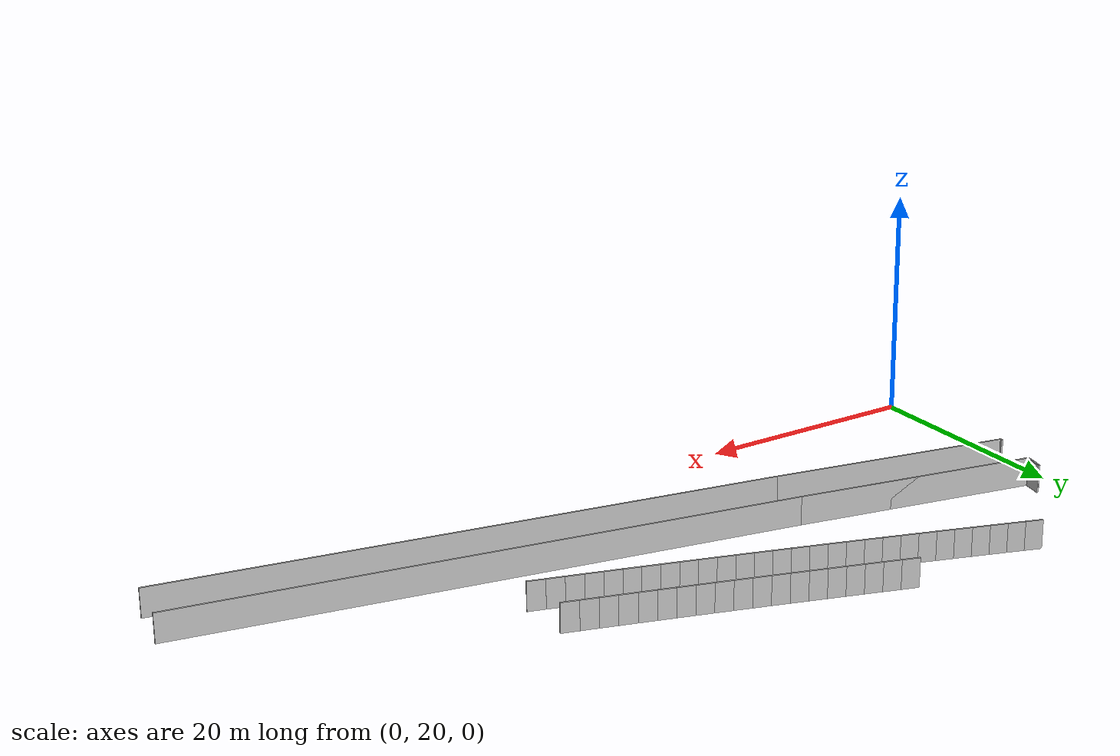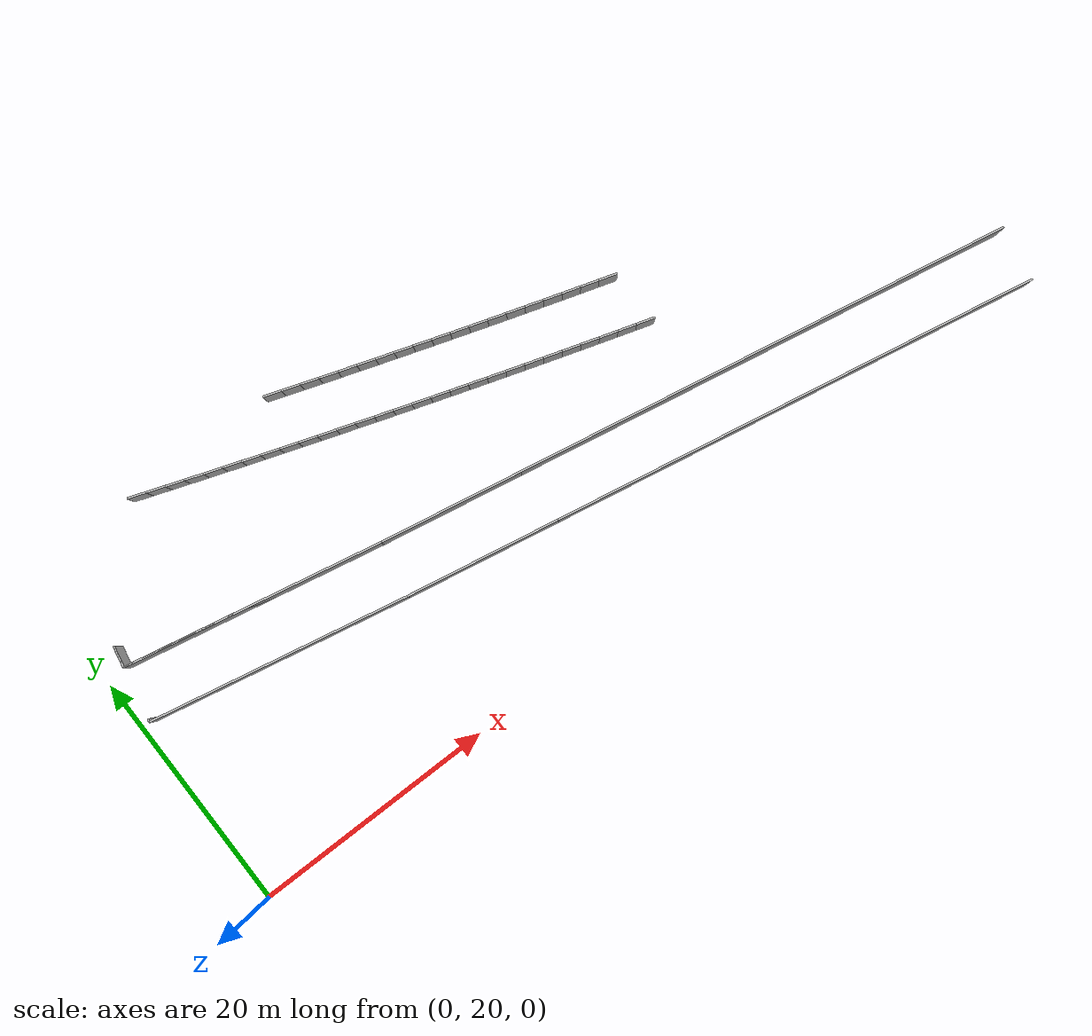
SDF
<?xml version="1.0" ?>
<sdf version="1.6">
  <model name="sps_1604">
    <pose frame="">0 0 0 0 -0 0</pose>
    <static>1</static>
    <self_collide>0</self_collide>
    <allow_auto_disable>0</allow_auto_disable>
    <link name="Wall27">
      <kinematic>0</kinematic>
      <gravity>1</gravity>
      <self_collide>0</self_collide>
      <collision name="collision">
        <geometry>
          <box>
            <size>21.2884 0.15 2.5</size>
          </box>
        </geometry>
        <pose frame="">0 0 0 0 -0 0</pose>
      </collision>
      <visual name="visual">
        <geometry>
          <box>
            <size>21.2884 0.15 2.5</size>
          </box>
        </geometry>
        <pose frame="">0 0 0 0 -0 0</pose>
        <cast_shadows>1</cast_shadows>
        <transparency>0.0</transparency>
      </visual>
      <pose frame="">11.6385 33.6256 1.25 0 -0 2.93723</pose>
    </link>
    <link name="Wall282">
      <kinematic>0</kinematic>
      <gravity>1</gravity>
      <self_collide>0</self_collide>
      <collision name="collision">
        <geometry>
          <box>
            <size>1.74962 0.15 2.5</size>
          </box>
        </geometry>
        <pose frame="">0 0 0 0 -0 0</pose>
      </collision>
      <visual name="visual">
        <geometry>
          <box>
            <size>1.74962 0.15 2.5</size>
          </box>
        </geometry>
        <pose frame="">0 0 0 0 -0 0</pose>
        <cast_shadows>1</cast_shadows>
        <transparency>0.0</transparency>
      </visual>
      <pose frame="">2.29986 41.0501 1.25 0 -0 1.36638</pose>
    </link>
    <link name="Wall284">
      <kinematic>0</kinematic>
      <gravity>1</gravity>
      <self_collide>0</self_collide>
      <collision name="collision">
        <geometry>
          <box>
            <size>11.7016 0.15 2.5</size>
          </box>
        </geometry>
        <pose frame="">0 0 0 0 -0 0</pose>
      </collision>
      <visual name="visual">
        <geometry>
          <box>
            <size>11.7016 0.15 2.5</size>
          </box>
        </geometry>
        <pose frame="">0 0 0 0 -0 0</pose>
        <cast_shadows>1</cast_shadows>
        <transparency>0.0</transparency>
      </visual>
      <pose frame="">28.7219 34.7762 1.25 0 -0 2.95339</pose>
    </link>
    <link name="Wall353">
      <kinematic>0</kinematic>
      <gravity>1</gravity>
      <self_collide>0</self_collide>
      <collision name="collision">
        <geometry>
          <box>
            <size>12.6313 0.15 2.5</size>
          </box>
        </geometry>
        <pose frame="">0 0 0 0 -0 0</pose>
      </collision>
      <visual name="visual">
        <geometry>
          <box>
            <size>12.6313 0.15 2.5</size>
          </box>
        </geometry>
        <pose frame="">0 0 0 0 -0 0</pose>
        <cast_shadows>1</cast_shadows>
        <transparency>0.0</transparency>
      </visual>
      <pose frame="">28.2653 30.2838 1.25 0 -0 2.95338</pose>
    </link>
    <link name="Wall432">
      <kinematic>0</kinematic>
      <gravity>1</gravity>
      <self_collide>0</self_collide>
      <collision name="collision">
        <geometry>
          <box>
            <size>0.249531 0.15 2.5</size>
          </box>
        </geometry>
        <pose frame="">0 0 0 0 -0 0</pose>
      </collision>
      <visual name="visual">
        <geometry>
          <box>
            <size>0.249531 0.15 2.5</size>
          </box>
        </geometry>
        <pose frame="">0 0 0 0 -0 0</pose>
        <cast_shadows>1</cast_shadows>
        <transparency>0.0</transparency>
      </visual>
      <pose frame="">1.24105 35.9079 1.25 0 -0 1.36736</pose>
    </link>
    <link name="Wall611">
      <kinematic>0</kinematic>
      <gravity>1</gravity>
      <self_collide>0</self_collide>
      <collision name="collision">
        <geometry>
          <box>
            <size>21.2955 0.15 2.5</size>
          </box>
        </geometry>
        <pose frame="">0 0 0 0 -0 0</pose>
      </collision>
      <visual name="visual">
        <geometry>
          <box>
            <size>21.2955 0.15 2.5</size>
          </box>
        </geometry>
        <pose frame="">0 0 0 0 -0 0</pose>
        <cast_shadows>1</cast_shadows>
        <transparency>0.0</transparency>
      </visual>
      <pose frame="">12.5484 38.0322 1.25 0 -0 2.93719</pose>
    </link>
    <link name="Wall989">
      <kinematic>0</kinematic>
      <gravity>1</gravity>
      <self_collide>0</self_collide>
      <collision name="collision">
        <geometry>
          <box>
            <size>52.9169 0.15 2.5</size>
          </box>
        </geometry>
        <pose frame="">0 0 0 0 -0 0</pose>
      </collision>
      <visual name="visual">
        <geometry>
          <box>
            <size>52.9169 0.15 2.5</size>
          </box>
        </geometry>
        <pose frame="">0 0 0 0 -0 0</pose>
        <cast_shadows>1</cast_shadows>
        <transparency>0.0</transparency>
      </visual>
      <pose frame="">48.0525 26.515 1.25 0 -0 2.95338</pose>
    </link>
    <link name="Wall990">
      <kinematic>0</kinematic>
      <gravity>1</gravity>
      <self_collide>0</self_collide>
      <collision name="collision">
        <geometry>
          <box>
            <size>21.2884 0.15 2.5</size>
          </box>
        </geometry>
        <pose frame="">0 0 0 0 -0 0</pose>
      </collision>
      <visual name="visual">
        <geometry>
          <box>
            <size>21.2884 0.15 2.5</size>
          </box>
        </geometry>
        <pose frame="">0 0 0 0 -0 0</pose>
        <cast_shadows>1</cast_shadows>
        <transparency>0.0</transparency>
      </visual>
      <pose frame="">11.6385 33.6256 1.25 0 -0 2.93723</pose>
    </link>
    <link name="Wall991">
      <kinematic>0</kinematic>
      <gravity>1</gravity>
      <self_collide>0</self_collide>
      <collision name="collision">
        <geometry>
          <box>
            <size>0.249531 0.15 2.5</size>
          </box>
        </geometry>
        <pose frame="">0 0 0 0 -0 0</pose>
      </collision>
      <visual name="visual">
        <geometry>
          <box>
            <size>0.249531 0.15 2.5</size>
          </box>
        </geometry>
        <pose frame="">0 0 0 0 -0 0</pose>
        <cast_shadows>1</cast_shadows>
        <transparency>0.0</transparency>
      </visual>
      <pose frame="">1.24105 35.9079 1.25 0 -0 1.36736</pose>
    </link>
    <link name="Wall995">
      <kinematic>0</kinematic>
      <gravity>1</gravity>
      <self_collide>0</self_collide>
      <collision name="collision">
        <geometry>
          <box>
            <size>1.74962 0.15 2.5</size>
          </box>
        </geometry>
        <pose frame="">0 0 0 0 -0 0</pose>
      </collision>
      <visual name="visual">
        <geometry>
          <box>
            <size>1.74962 0.15 2.5</size>
          </box>
        </geometry>
        <pose frame="">0 0 0 0 -0 0</pose>
        <cast_shadows>1</cast_shadows>
        <transparency>0.0</transparency>
      </visual>
      <pose frame="">2.29986 41.0501 1.25 0 0 -1.77521</pose>
    </link>
    <link name="Wall996">
      <kinematic>0</kinematic>
      <gravity>1</gravity>
      <self_collide>0</self_collide>
      <collision name="collision">
        <geometry>
          <box>
            <size>21.2955 0.15 2.5</size>
          </box>
        </geometry>
        <pose frame="">0 0 0 0 -0 0</pose>
      </collision>
      <visual name="visual">
        <geometry>
          <box>
            <size>21.2955 0.15 2.5</size>
          </box>
        </geometry>
        <pose frame="">0 0 0 0 -0 0</pose>
        <cast_shadows>1</cast_shadows>
        <transparency>0.0</transparency>
      </visual>
      <pose frame="">12.5484 38.0322 1.25 0 0 -0.204404</pose>
    </link>
    <link name="Wall997">
      <kinematic>0</kinematic>
      <gravity>1</gravity>
      <self_collide>0</self_collide>
      <collision name="collision">
        <geometry>
          <box>
            <size>52.7767 0.15 2.5</size>
          </box>
        </geometry>
        <pose frame="">0 0 0 0 -0 0</pose>
      </collision>
      <visual name="visual">
        <geometry>
          <box>
            <size>52.7767 0.15 2.5</size>
          </box>
        </geometry>
        <pose frame="">0 0 0 0 -0 0</pose>
        <cast_shadows>1</cast_shadows>
        <transparency>0.0</transparency>
      </visual>
      <pose frame="">48.8968 30.9339 1.25 0 0 -0.188199</pose>
    </link>
    <link name="Wall8790">
      <kinematic>0</kinematic>
      <gravity>1</gravity>
      <self_collide>0</self_collide>
      <collision name="collision">
        <geometry>
          <box>
            <size>1.499 0.15 2.5</size>
          </box>
        </geometry>
        <pose frame="">0 0 0 0 -0 0</pose>
      </collision>
      <visual name="visual">
        <geometry>
          <box>
            <size>1.499 0.15 2.5</size>
          </box>
        </geometry>
        <pose frame="">0 0 0 0 -0 0</pose>
        <cast_shadows>1</cast_shadows>
        <transparency>0.0</transparency>
      </visual>
      <pose frame="">10.5833 49.8978 1.25 0 0 -0.346732</pose>
    </link>
    <link name="Wall8791">
      <kinematic>0</kinematic>
      <gravity>1</gravity>
      <self_collide>0</self_collide>
      <collision name="collision">
        <geometry>
          <box>
            <size>1.49897 0.15 2.5</size>
          </box>
        </geometry>
        <pose frame="">0 0 0 0 -0 0</pose>
      </collision>
      <visual name="visual">
        <geometry>
          <box>
            <size>1.49897 0.15 2.5</size>
          </box>
        </geometry>
        <pose frame="">0 0 0 0 -0 0</pose>
        <cast_shadows>1</cast_shadows>
        <transparency>0.0</transparency>
      </visual>
      <pose frame="">11.9936 49.3896 1.25 0 0 -0.345007</pose>
    </link>
    <link name="Wall8792">
      <kinematic>0</kinematic>
      <gravity>1</gravity>
      <self_collide>0</self_collide>
      <collision name="collision">
        <geometry>
          <box>
            <size>1.499 0.15 2.5</size>
          </box>
        </geometry>
        <pose frame="">0 0 0 0 -0 0</pose>
      </collision>
      <visual name="visual">
        <geometry>
          <box>
            <size>1.499 0.15 2.5</size>
          </box>
        </geometry>
        <pose frame="">0 0 0 0 -0 0</pose>
        <cast_shadows>1</cast_shadows>
        <transparency>0.0</transparency>
      </visual>
      <pose frame="">13.4046 48.8836 1.25 0 0 -0.343616</pose>
    </link>
    <link name="Wall8793">
      <kinematic>0</kinematic>
      <gravity>1</gravity>
      <self_collide>0</self_collide>
      <collision name="collision">
        <geometry>
          <box>
            <size>1.49901 0.15 2.5</size>
          </box>
        </geometry>
        <pose frame="">0 0 0 0 -0 0</pose>
      </collision>
      <visual name="visual">
        <geometry>
          <box>
            <size>1.49901 0.15 2.5</size>
          </box>
        </geometry>
        <pose frame="">0 0 0 0 -0 0</pose>
        <cast_shadows>1</cast_shadows>
        <transparency>0.0</transparency>
      </visual>
      <pose frame="">14.8164 48.3798 1.25 0 0 -0.341928</pose>
    </link>
    <link name="Wall8794">
      <kinematic>0</kinematic>
      <gravity>1</gravity>
      <self_collide>0</self_collide>
      <collision name="collision">
        <geometry>
          <box>
            <size>1.49896 0.15 2.5</size>
          </box>
        </geometry>
        <pose frame="">0 0 0 0 -0 0</pose>
      </collision>
      <visual name="visual">
        <geometry>
          <box>
            <size>1.49896 0.15 2.5</size>
          </box>
        </geometry>
        <pose frame="">0 0 0 0 -0 0</pose>
        <cast_shadows>1</cast_shadows>
        <transparency>0.0</transparency>
      </visual>
      <pose frame="">16.229 47.8783 1.25 0 0 -0.340384</pose>
    </link>
    <link name="Wall8795">
      <kinematic>0</kinematic>
      <gravity>1</gravity>
      <self_collide>0</self_collide>
      <collision name="collision">
        <geometry>
          <box>
            <size>1.49902 0.15 2.5</size>
          </box>
        </geometry>
        <pose frame="">0 0 0 0 -0 0</pose>
      </collision>
      <visual name="visual">
        <geometry>
          <box>
            <size>1.49902 0.15 2.5</size>
          </box>
        </geometry>
        <pose frame="">0 0 0 0 -0 0</pose>
        <cast_shadows>1</cast_shadows>
        <transparency>0.0</transparency>
      </visual>
      <pose frame="">17.6424 47.379 1.25 0 0 -0.338773</pose>
    </link>
    <link name="Wall8796">
      <kinematic>0</kinematic>
      <gravity>1</gravity>
      <self_collide>0</self_collide>
      <collision name="collision">
        <geometry>
          <box>
            <size>1.49883 0.15 2.5</size>
          </box>
        </geometry>
        <pose frame="">0 0 0 0 -0 0</pose>
      </collision>
      <visual name="visual">
        <geometry>
          <box>
            <size>1.49883 0.15 2.5</size>
          </box>
        </geometry>
        <pose frame="">0 0 0 0 -0 0</pose>
        <cast_shadows>1</cast_shadows>
        <transparency>0.0</transparency>
      </visual>
      <pose frame="">19.0564 46.8819 1.25 0 0 -0.337307</pose>
    </link>
    <link name="Wall8797">
      <kinematic>0</kinematic>
      <gravity>1</gravity>
      <self_collide>0</self_collide>
      <collision name="collision">
        <geometry>
          <box>
            <size>1.49883 0.15 2.5</size>
          </box>
        </geometry>
        <pose frame="">0 0 0 0 -0 0</pose>
      </collision>
      <visual name="visual">
        <geometry>
          <box>
            <size>1.49883 0.15 2.5</size>
          </box>
        </geometry>
        <pose frame="">0 0 0 0 -0 0</pose>
        <cast_shadows>1</cast_shadows>
        <transparency>0.0</transparency>
      </visual>
      <pose frame="">20.4712 46.3871 1.25 0 0 -0.335581</pose>
    </link>
    <link name="Wall8798">
      <kinematic>0</kinematic>
      <gravity>1</gravity>
      <self_collide>0</self_collide>
      <collision name="collision">
        <geometry>
          <box>
            <size>1.49903 0.15 2.5</size>
          </box>
        </geometry>
        <pose frame="">0 0 0 0 -0 0</pose>
      </collision>
      <visual name="visual">
        <geometry>
          <box>
            <size>1.49903 0.15 2.5</size>
          </box>
        </geometry>
        <pose frame="">0 0 0 0 -0 0</pose>
        <cast_shadows>1</cast_shadows>
        <transparency>0.0</transparency>
      </visual>
      <pose frame="">21.887 45.8946 1.25 0 0 -0.333983</pose>
    </link>
    <link name="Wall8799">
      <kinematic>0</kinematic>
      <gravity>1</gravity>
      <self_collide>0</self_collide>
      <collision name="collision">
        <geometry>
          <box>
            <size>1.49889 0.15 2.5</size>
          </box>
        </geometry>
        <pose frame="">0 0 0 0 -0 0</pose>
      </collision>
      <visual name="visual">
        <geometry>
          <box>
            <size>1.49889 0.15 2.5</size>
          </box>
        </geometry>
        <pose frame="">0 0 0 0 -0 0</pose>
        <cast_shadows>1</cast_shadows>
        <transparency>0.0</transparency>
      </visual>
      <pose frame="">23.3035 45.4043 1.25 0 0 -0.332464</pose>
    </link>
    <link name="Wall8800">
      <kinematic>0</kinematic>
      <gravity>1</gravity>
      <self_collide>0</self_collide>
      <collision name="collision">
        <geometry>
          <box>
            <size>1.49909 0.15 2.5</size>
          </box>
        </geometry>
        <pose frame="">0 0 0 0 -0 0</pose>
      </collision>
      <visual name="visual">
        <geometry>
          <box>
            <size>1.49909 0.15 2.5</size>
          </box>
        </geometry>
        <pose frame="">0 0 0 0 -0 0</pose>
        <cast_shadows>1</cast_shadows>
        <transparency>0.0</transparency>
      </visual>
      <pose frame="">24.7208 44.9162 1.25 0 0 -0.330866</pose>
    </link>
    <link name="Wall8801">
      <kinematic>0</kinematic>
      <gravity>1</gravity>
      <self_collide>0</self_collide>
      <collision name="collision">
        <geometry>
          <box>
            <size>1.49896 0.15 2.5</size>
          </box>
        </geometry>
        <pose frame="">0 0 0 0 -0 0</pose>
      </collision>
      <visual name="visual">
        <geometry>
          <box>
            <size>1.49896 0.15 2.5</size>
          </box>
        </geometry>
        <pose frame="">0 0 0 0 -0 0</pose>
        <cast_shadows>1</cast_shadows>
        <transparency>0.0</transparency>
      </visual>
      <pose frame="">26.1388 44.4303 1.25 0 0 -0.329348</pose>
    </link>
    <link name="Wall8802">
      <kinematic>0</kinematic>
      <gravity>1</gravity>
      <self_collide>0</self_collide>
      <collision name="collision">
        <geometry>
          <box>
            <size>1.49883 0.15 2.5</size>
          </box>
        </geometry>
        <pose frame="">0 0 0 0 -0 0</pose>
      </collision>
      <visual name="visual">
        <geometry>
          <box>
            <size>1.49883 0.15 2.5</size>
          </box>
        </geometry>
        <pose frame="">0 0 0 0 -0 0</pose>
        <cast_shadows>1</cast_shadows>
        <transparency>0.0</transparency>
      </visual>
      <pose frame="">27.5575 43.9466 1.25 0 0 -0.327829</pose>
    </link>
    <link name="Wall8803">
      <kinematic>0</kinematic>
      <gravity>1</gravity>
      <self_collide>0</self_collide>
      <collision name="collision">
        <geometry>
          <box>
            <size>1.49897 0.15 2.5</size>
          </box>
        </geometry>
        <pose frame="">0 0 0 0 -0 0</pose>
      </collision>
      <visual name="visual">
        <geometry>
          <box>
            <size>1.49897 0.15 2.5</size>
          </box>
        </geometry>
        <pose frame="">0 0 0 0 -0 0</pose>
        <cast_shadows>1</cast_shadows>
        <transparency>0.0</transparency>
      </visual>
      <pose frame="">28.977 43.4652 1.25 0 0 -0.326077</pose>
    </link>
    <link name="Wall8804">
      <kinematic>0</kinematic>
      <gravity>1</gravity>
      <self_collide>0</self_collide>
      <collision name="collision">
        <geometry>
          <box>
            <size>1.49886 0.15 2.5</size>
          </box>
        </geometry>
        <pose frame="">0 0 0 0 -0 0</pose>
      </collision>
      <visual name="visual">
        <geometry>
          <box>
            <size>1.49886 0.15 2.5</size>
          </box>
        </geometry>
        <pose frame="">0 0 0 0 -0 0</pose>
        <cast_shadows>1</cast_shadows>
        <transparency>0.0</transparency>
      </visual>
      <pose frame="">30.3973 42.9861 1.25 0 0 -0.324596</pose>
    </link>
    <link name="Wall8805">
      <kinematic>0</kinematic>
      <gravity>1</gravity>
      <self_collide>0</self_collide>
      <collision name="collision">
        <geometry>
          <box>
            <size>1.49896 0.15 2.5</size>
          </box>
        </geometry>
        <pose frame="">0 0 0 0 -0 0</pose>
      </collision>
      <visual name="visual">
        <geometry>
          <box>
            <size>1.49896 0.15 2.5</size>
          </box>
        </geometry>
        <pose frame="">0 0 0 0 -0 0</pose>
        <cast_shadows>1</cast_shadows>
        <transparency>0.0</transparency>
      </visual>
      <pose frame="">31.8184 42.5092 1.25 0 0 -0.322987</pose>
    </link>
    <link name="Wall8806">
      <kinematic>0</kinematic>
      <gravity>1</gravity>
      <self_collide>0</self_collide>
      <collision name="collision">
        <geometry>
          <box>
            <size>1.49909 0.15 2.5</size>
          </box>
        </geometry>
        <pose frame="">0 0 0 0 -0 0</pose>
      </collision>
      <visual name="visual">
        <geometry>
          <box>
            <size>1.49909 0.15 2.5</size>
          </box>
        </geometry>
        <pose frame="">0 0 0 0 -0 0</pose>
        <cast_shadows>1</cast_shadows>
        <transparency>0.0</transparency>
      </visual>
      <pose frame="">33.2403 42.0346 1.25 0 0 -0.321326</pose>
    </link>
    <link name="Wall8807">
      <kinematic>0</kinematic>
      <gravity>1</gravity>
      <self_collide>0</self_collide>
      <collision name="collision">
        <geometry>
          <box>
            <size>1.49884 0.15 2.5</size>
          </box>
        </geometry>
        <pose frame="">0 0 0 0 -0 0</pose>
      </collision>
      <visual name="visual">
        <geometry>
          <box>
            <size>1.49884 0.15 2.5</size>
          </box>
        </geometry>
        <pose frame="">0 0 0 0 -0 0</pose>
        <cast_shadows>1</cast_shadows>
        <transparency>0.0</transparency>
      </visual>
      <pose frame="">34.6628 41.5622 1.25 0 0 -0.319922</pose>
    </link>
    <link name="Wall8808">
      <kinematic>0</kinematic>
      <gravity>1</gravity>
      <self_collide>0</self_collide>
      <collision name="collision">
        <geometry>
          <box>
            <size>1.49891 0.15 2.5</size>
          </box>
        </geometry>
        <pose frame="">0 0 0 0 -0 0</pose>
      </collision>
      <visual name="visual">
        <geometry>
          <box>
            <size>1.49891 0.15 2.5</size>
          </box>
        </geometry>
        <pose frame="">0 0 0 0 -0 0</pose>
        <cast_shadows>1</cast_shadows>
        <transparency>0.0</transparency>
      </visual>
      <pose frame="">36.0861 41.092 1.25 0 0 -0.318235</pose>
    </link>
    <link name="Wall8809">
      <kinematic>0</kinematic>
      <gravity>1</gravity>
      <self_collide>0</self_collide>
      <collision name="collision">
        <geometry>
          <box>
            <size>1.49892 0.15 2.5</size>
          </box>
        </geometry>
        <pose frame="">0 0 0 0 -0 0</pose>
      </collision>
      <visual name="visual">
        <geometry>
          <box>
            <size>1.49892 0.15 2.5</size>
          </box>
        </geometry>
        <pose frame="">0 0 0 0 -0 0</pose>
        <cast_shadows>1</cast_shadows>
        <transparency>0.0</transparency>
      </visual>
      <pose frame="">37.5101 40.6241 1.25 0 0 -0.31669</pose>
    </link>
    <link name="Wall8810">
      <kinematic>0</kinematic>
      <gravity>1</gravity>
      <self_collide>0</self_collide>
      <collision name="collision">
        <geometry>
          <box>
            <size>1.49905 0.15 2.5</size>
          </box>
        </geometry>
        <pose frame="">0 0 0 0 -0 0</pose>
      </collision>
      <visual name="visual">
        <geometry>
          <box>
            <size>1.49905 0.15 2.5</size>
          </box>
        </geometry>
        <pose frame="">0 0 0 0 -0 0</pose>
        <cast_shadows>1</cast_shadows>
        <transparency>0.0</transparency>
      </visual>
      <pose frame="">38.9349 40.1584 1.25 0 0 -0.31512</pose>
    </link>
    <link name="Wall8811">
      <kinematic>0</kinematic>
      <gravity>1</gravity>
      <self_collide>0</self_collide>
      <collision name="collision">
        <geometry>
          <box>
            <size>1.49883 0.15 2.5</size>
          </box>
        </geometry>
        <pose frame="">0 0 0 0 -0 0</pose>
      </collision>
      <visual name="visual">
        <geometry>
          <box>
            <size>1.49883 0.15 2.5</size>
          </box>
        </geometry>
        <pose frame="">0 0 0 0 -0 0</pose>
        <cast_shadows>1</cast_shadows>
        <transparency>0.0</transparency>
      </visual>
      <pose frame="">40.3604 39.695 1.25 0 0 -0.313496</pose>
    </link>
    <link name="Wall8812">
      <kinematic>0</kinematic>
      <gravity>1</gravity>
      <self_collide>0</self_collide>
      <collision name="collision">
        <geometry>
          <box>
            <size>1.4992 0.15 2.5</size>
          </box>
        </geometry>
        <pose frame="">0 0 0 0 -0 0</pose>
      </collision>
      <visual name="visual">
        <geometry>
          <box>
            <size>1.4992 0.15 2.5</size>
          </box>
        </geometry>
        <pose frame="">0 0 0 0 -0 0</pose>
        <cast_shadows>1</cast_shadows>
        <transparency>0.0</transparency>
      </visual>
      <pose frame="">41.7867 39.2338 1.25 0 0 -0.312005</pose>
    </link>
    <link name="Wall8813">
      <kinematic>0</kinematic>
      <gravity>1</gravity>
      <self_collide>0</self_collide>
      <collision name="collision">
        <geometry>
          <box>
            <size>1.49875 0.15 2.5</size>
          </box>
        </geometry>
        <pose frame="">0 0 0 0 -0 0</pose>
      </collision>
      <visual name="visual">
        <geometry>
          <box>
            <size>1.49875 0.15 2.5</size>
          </box>
        </geometry>
        <pose frame="">0 0 0 0 -0 0</pose>
        <cast_shadows>1</cast_shadows>
        <transparency>0.0</transparency>
      </visual>
      <pose frame="">43.2137 38.7749 1.25 0 0 -0.310263</pose>
    </link>
    <link name="Wall8814">
      <kinematic>0</kinematic>
      <gravity>1</gravity>
      <self_collide>0</self_collide>
      <collision name="collision">
        <geometry>
          <box>
            <size>1.49901 0.15 2.5</size>
          </box>
        </geometry>
        <pose frame="">0 0 0 0 -0 0</pose>
      </collision>
      <visual name="visual">
        <geometry>
          <box>
            <size>1.49901 0.15 2.5</size>
          </box>
        </geometry>
        <pose frame="">0 0 0 0 -0 0</pose>
        <cast_shadows>1</cast_shadows>
        <transparency>0.0</transparency>
      </visual>
      <pose frame="">44.6413 38.3184 1.25 0 0 -0.308668</pose>
    </link>
    <link name="Wall8815">
      <kinematic>0</kinematic>
      <gravity>1</gravity>
      <self_collide>0</self_collide>
      <collision name="collision">
        <geometry>
          <box>
            <size>1.499 0.15 2.5</size>
          </box>
        </geometry>
        <pose frame="">0 0 0 0 -0 0</pose>
      </collision>
      <visual name="visual">
        <geometry>
          <box>
            <size>1.499 0.15 2.5</size>
          </box>
        </geometry>
        <pose frame="">0 0 0 0 -0 0</pose>
        <cast_shadows>1</cast_shadows>
        <transparency>0.0</transparency>
      </visual>
      <pose frame="">46.0698 37.8641 1.25 0 0 -0.307174</pose>
    </link>
    <link name="Wall8816">
      <kinematic>0</kinematic>
      <gravity>1</gravity>
      <self_collide>0</self_collide>
      <collision name="collision">
        <geometry>
          <box>
            <size>1.49884 0.15 2.5</size>
          </box>
        </geometry>
        <pose frame="">0 0 0 0 -0 0</pose>
      </collision>
      <visual name="visual">
        <geometry>
          <box>
            <size>1.49884 0.15 2.5</size>
          </box>
        </geometry>
        <pose frame="">0 0 0 0 -0 0</pose>
        <cast_shadows>1</cast_shadows>
        <transparency>0.0</transparency>
      </visual>
      <pose frame="">47.499 37.412 1.25 0 0 -0.305627</pose>
    </link>
    <link name="Wall8817">
      <kinematic>0</kinematic>
      <gravity>1</gravity>
      <self_collide>0</self_collide>
      <collision name="collision">
        <geometry>
          <box>
            <size>1.499 0.15 2.5</size>
          </box>
        </geometry>
        <pose frame="">0 0 0 0 -0 0</pose>
      </collision>
      <visual name="visual">
        <geometry>
          <box>
            <size>1.499 0.15 2.5</size>
          </box>
        </geometry>
        <pose frame="">0 0 0 0 -0 0</pose>
        <cast_shadows>1</cast_shadows>
        <transparency>0.0</transparency>
      </visual>
      <pose frame="">48.9288 36.9621 1.25 0 0 -0.304058</pose>
    </link>
    <link name="Wall9879">
      <kinematic>0</kinematic>
      <gravity>1</gravity>
      <self_collide>0</self_collide>
      <collision name="collision">
        <geometry>
          <box>
            <size>1.49225 0.15 2.5</size>
          </box>
        </geometry>
        <pose frame="">0 0 0 0 -0 0</pose>
      </collision>
      <visual name="visual">
        <geometry>
          <box>
            <size>1.49225 0.15 2.5</size>
          </box>
        </geometry>
        <pose frame="">0 0 0 0 -0 0</pose>
        <cast_shadows>1</cast_shadows>
        <transparency>0.0</transparency>
      </visual>
      <pose frame="">23.2443 49.8059 1.25 0 0 -0.333999</pose>
    </link>
    <link name="Wall9880">
      <kinematic>0</kinematic>
      <gravity>1</gravity>
      <self_collide>0</self_collide>
      <collision name="collision">
        <geometry>
          <box>
            <size>1.49258 0.15 2.5</size>
          </box>
        </geometry>
        <pose frame="">0 0 0 0 -0 0</pose>
      </collision>
      <visual name="visual">
        <geometry>
          <box>
            <size>1.49258 0.15 2.5</size>
          </box>
        </geometry>
        <pose frame="">0 0 0 0 -0 0</pose>
        <cast_shadows>1</cast_shadows>
        <transparency>0.0</transparency>
      </visual>
      <pose frame="">24.6547 49.3177 1.25 0 0 -0.332497</pose>
    </link>
    <link name="Wall9881">
      <kinematic>0</kinematic>
      <gravity>1</gravity>
      <self_collide>0</self_collide>
      <collision name="collision">
        <geometry>
          <box>
            <size>1.49232 0.15 2.5</size>
          </box>
        </geometry>
        <pose frame="">0 0 0 0 -0 0</pose>
      </collision>
      <visual name="visual">
        <geometry>
          <box>
            <size>1.49232 0.15 2.5</size>
          </box>
        </geometry>
        <pose frame="">0 0 0 0 -0 0</pose>
        <cast_shadows>1</cast_shadows>
        <transparency>0.0</transparency>
      </visual>
      <pose frame="">26.0658 48.8317 1.25 0 0 -0.330869</pose>
    </link>
    <link name="Wall9882">
      <kinematic>0</kinematic>
      <gravity>1</gravity>
      <self_collide>0</self_collide>
      <collision name="collision">
        <geometry>
          <box>
            <size>1.49242 0.15 2.5</size>
          </box>
        </geometry>
        <pose frame="">0 0 0 0 -0 0</pose>
      </collision>
      <visual name="visual">
        <geometry>
          <box>
            <size>1.49242 0.15 2.5</size>
          </box>
        </geometry>
        <pose frame="">0 0 0 0 -0 0</pose>
        <cast_shadows>1</cast_shadows>
        <transparency>0.0</transparency>
      </visual>
      <pose frame="">27.4776 48.348 1.25 0 0 -0.32929</pose>
    </link>
    <link name="Wall9883">
      <kinematic>0</kinematic>
      <gravity>1</gravity>
      <self_collide>0</self_collide>
      <collision name="collision">
        <geometry>
          <box>
            <size>1.4924 0.15 2.5</size>
          </box>
        </geometry>
        <pose frame="">0 0 0 0 -0 0</pose>
      </collision>
      <visual name="visual">
        <geometry>
          <box>
            <size>1.4924 0.15 2.5</size>
          </box>
        </geometry>
        <pose frame="">0 0 0 0 -0 0</pose>
        <cast_shadows>1</cast_shadows>
        <transparency>0.0</transparency>
      </visual>
      <pose frame="">28.8902 47.8665 1.25 0 0 -0.327739</pose>
    </link>
    <link name="Wall9884">
      <kinematic>0</kinematic>
      <gravity>1</gravity>
      <self_collide>0</self_collide>
      <collision name="collision">
        <geometry>
          <box>
            <size>1.4925 0.15 2.5</size>
          </box>
        </geometry>
        <pose frame="">0 0 0 0 -0 0</pose>
      </collision>
      <visual name="visual">
        <geometry>
          <box>
            <size>1.4925 0.15 2.5</size>
          </box>
        </geometry>
        <pose frame="">0 0 0 0 -0 0</pose>
        <cast_shadows>1</cast_shadows>
        <transparency>0.0</transparency>
      </visual>
      <pose frame="">30.3036 47.3872 1.25 0 0 -0.32616</pose>
    </link>
    <link name="Wall9885">
      <kinematic>0</kinematic>
      <gravity>1</gravity>
      <self_collide>0</self_collide>
      <collision name="collision">
        <geometry>
          <box>
            <size>1.49232 0.15 2.5</size>
          </box>
        </geometry>
        <pose frame="">0 0 0 0 -0 0</pose>
      </collision>
      <visual name="visual">
        <geometry>
          <box>
            <size>1.49232 0.15 2.5</size>
          </box>
        </geometry>
        <pose frame="">0 0 0 0 -0 0</pose>
        <cast_shadows>1</cast_shadows>
        <transparency>0.0</transparency>
      </visual>
      <pose frame="">31.7176 46.9101 1.25 0 0 -0.324648</pose>
    </link>
    <link name="Wall9886">
      <kinematic>0</kinematic>
      <gravity>1</gravity>
      <self_collide>0</self_collide>
      <collision name="collision">
        <geometry>
          <box>
            <size>1.49253 0.15 2.5</size>
          </box>
        </geometry>
        <pose frame="">0 0 0 0 -0 0</pose>
      </collision>
      <visual name="visual">
        <geometry>
          <box>
            <size>1.49253 0.15 2.5</size>
          </box>
        </geometry>
        <pose frame="">0 0 0 0 -0 0</pose>
        <cast_shadows>1</cast_shadows>
        <transparency>0.0</transparency>
      </visual>
      <pose frame="">33.1325 46.4353 1.25 0 0 -0.322876</pose>
    </link>
    <link name="Wall9887">
      <kinematic>0</kinematic>
      <gravity>1</gravity>
      <self_collide>0</self_collide>
      <collision name="collision">
        <geometry>
          <box>
            <size>1.49226 0.15 2.5</size>
          </box>
        </geometry>
        <pose frame="">0 0 0 0 -0 0</pose>
      </collision>
      <visual name="visual">
        <geometry>
          <box>
            <size>1.49226 0.15 2.5</size>
          </box>
        </geometry>
        <pose frame="">0 0 0 0 -0 0</pose>
        <cast_shadows>1</cast_shadows>
        <transparency>0.0</transparency>
      </visual>
      <pose frame="">34.5481 45.9628 1.25 0 0 -0.321427</pose>
    </link>
    <link name="Wall9888">
      <kinematic>0</kinematic>
      <gravity>1</gravity>
      <self_collide>0</self_collide>
      <collision name="collision">
        <geometry>
          <box>
            <size>1.49253 0.15 2.5</size>
          </box>
        </geometry>
        <pose frame="">0 0 0 0 -0 0</pose>
      </collision>
      <visual name="visual">
        <geometry>
          <box>
            <size>1.49253 0.15 2.5</size>
          </box>
        </geometry>
        <pose frame="">0 0 0 0 -0 0</pose>
        <cast_shadows>1</cast_shadows>
        <transparency>0.0</transparency>
      </visual>
      <pose frame="">35.9645 45.4924 1.25 0 0 -0.319901</pose>
    </link>
    <link name="Wall9889">
      <kinematic>0</kinematic>
      <gravity>1</gravity>
      <self_collide>0</self_collide>
      <collision name="collision">
        <geometry>
          <box>
            <size>1.49232 0.15 2.5</size>
          </box>
        </geometry>
        <pose frame="">0 0 0 0 -0 0</pose>
      </collision>
      <visual name="visual">
        <geometry>
          <box>
            <size>1.49232 0.15 2.5</size>
          </box>
        </geometry>
        <pose frame="">0 0 0 0 -0 0</pose>
        <cast_shadows>1</cast_shadows>
        <transparency>0.0</transparency>
      </visual>
      <pose frame="">37.3816 45.0242 1.25 0 0 -0.31831</pose>
    </link>
    <link name="Wall9890">
      <kinematic>0</kinematic>
      <gravity>1</gravity>
      <self_collide>0</self_collide>
      <collision name="collision">
        <geometry>
          <box>
            <size>1.49237 0.15 2.5</size>
          </box>
        </geometry>
        <pose frame="">0 0 0 0 -0 0</pose>
      </collision>
      <visual name="visual">
        <geometry>
          <box>
            <size>1.49237 0.15 2.5</size>
          </box>
        </geometry>
        <pose frame="">0 0 0 0 -0 0</pose>
        <cast_shadows>1</cast_shadows>
        <transparency>0.0</transparency>
      </visual>
      <pose frame="">38.7993 44.5584 1.25 0 0 -0.316577</pose>
    </link>
    <link name="Wall9891">
      <kinematic>0</kinematic>
      <gravity>1</gravity>
      <self_collide>0</self_collide>
      <collision name="collision">
        <geometry>
          <box>
            <size>1.49233 0.15 2.5</size>
          </box>
        </geometry>
        <pose frame="">0 0 0 0 -0 0</pose>
      </collision>
      <visual name="visual">
        <geometry>
          <box>
            <size>1.49233 0.15 2.5</size>
          </box>
        </geometry>
        <pose frame="">0 0 0 0 -0 0</pose>
        <cast_shadows>1</cast_shadows>
        <transparency>0.0</transparency>
      </visual>
      <pose frame="">40.2179 44.0948 1.25 0 0 -0.315167</pose>
    </link>
    <link name="Wall9892">
      <kinematic>0</kinematic>
      <gravity>1</gravity>
      <self_collide>0</self_collide>
      <collision name="collision">
        <geometry>
          <box>
            <size>1.49252 0.15 2.5</size>
          </box>
        </geometry>
        <pose frame="">0 0 0 0 -0 0</pose>
      </collision>
      <visual name="visual">
        <geometry>
          <box>
            <size>1.49252 0.15 2.5</size>
          </box>
        </geometry>
        <pose frame="">0 0 0 0 -0 0</pose>
        <cast_shadows>1</cast_shadows>
        <transparency>0.0</transparency>
      </visual>
      <pose frame="">41.6372 43.6334 1.25 0 0 -0.313448</pose>
    </link>
    <link name="Wall9893">
      <kinematic>0</kinematic>
      <gravity>1</gravity>
      <self_collide>0</self_collide>
      <collision name="collision">
        <geometry>
          <box>
            <size>1.49243 0.15 2.5</size>
          </box>
        </geometry>
        <pose frame="">0 0 0 0 -0 0</pose>
      </collision>
      <visual name="visual">
        <geometry>
          <box>
            <size>1.49243 0.15 2.5</size>
          </box>
        </geometry>
        <pose frame="">0 0 0 0 -0 0</pose>
        <cast_shadows>1</cast_shadows>
        <transparency>0.0</transparency>
      </visual>
      <pose frame="">43.0573 43.1743 1.25 0 0 -0.311922</pose>
    </link>
    <link name="Wall9894">
      <kinematic>0</kinematic>
      <gravity>1</gravity>
      <self_collide>0</self_collide>
      <collision name="collision">
        <geometry>
          <box>
            <size>1.49226 0.15 2.5</size>
          </box>
        </geometry>
        <pose frame="">0 0 0 0 -0 0</pose>
      </collision>
      <visual name="visual">
        <geometry>
          <box>
            <size>1.49226 0.15 2.5</size>
          </box>
        </geometry>
        <pose frame="">0 0 0 0 -0 0</pose>
        <cast_shadows>1</cast_shadows>
        <transparency>0.0</transparency>
      </visual>
      <pose frame="">44.478 42.7174 1.25 0 0 -0.310368</pose>
    </link>
    <link name="Wall9895">
      <kinematic>0</kinematic>
      <gravity>1</gravity>
      <self_collide>0</self_collide>
      <collision name="collision">
        <geometry>
          <box>
            <size>1.49237 0.15 2.5</size>
          </box>
        </geometry>
        <pose frame="">0 0 0 0 -0 0</pose>
      </collision>
      <visual name="visual">
        <geometry>
          <box>
            <size>1.49237 0.15 2.5</size>
          </box>
        </geometry>
        <pose frame="">0 0 0 0 -0 0</pose>
        <cast_shadows>1</cast_shadows>
        <transparency>0.0</transparency>
      </visual>
      <pose frame="">45.8993 42.2628 1.25 0 0 -0.308714</pose>
    </link>
    <link name="Wall9896">
      <kinematic>0</kinematic>
      <gravity>1</gravity>
      <self_collide>0</self_collide>
      <collision name="collision">
        <geometry>
          <box>
            <size>1.49251 0.15 2.5</size>
          </box>
        </geometry>
        <pose frame="">0 0 0 0 -0 0</pose>
      </collision>
      <visual name="visual">
        <geometry>
          <box>
            <size>1.49251 0.15 2.5</size>
          </box>
        </geometry>
        <pose frame="">0 0 0 0 -0 0</pose>
        <cast_shadows>1</cast_shadows>
        <transparency>0.0</transparency>
      </visual>
      <pose frame="">47.3216 41.8104 1.25 0 0 -0.307266</pose>
    </link>
    <link name="Wall9897">
      <kinematic>0</kinematic>
      <gravity>1</gravity>
      <self_collide>0</self_collide>
      <collision name="collision">
        <geometry>
          <box>
            <size>1.49236 0.15 2.5</size>
          </box>
        </geometry>
        <pose frame="">0 0 0 0 -0 0</pose>
      </collision>
      <visual name="visual">
        <geometry>
          <box>
            <size>1.49236 0.15 2.5</size>
          </box>
        </geometry>
        <pose frame="">0 0 0 0 -0 0</pose>
        <cast_shadows>1</cast_shadows>
        <transparency>0.0</transparency>
      </visual>
      <pose frame="">48.7445 41.3602 1.25 0 0 -0.305583</pose>
    </link>
  </model>
</sdf>
